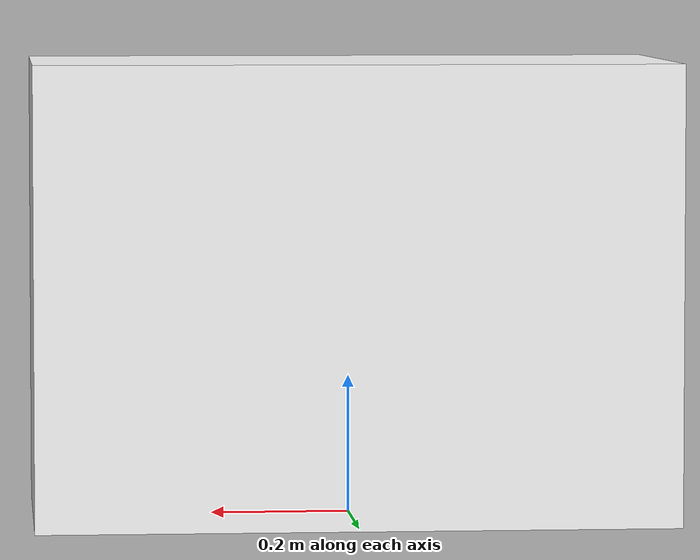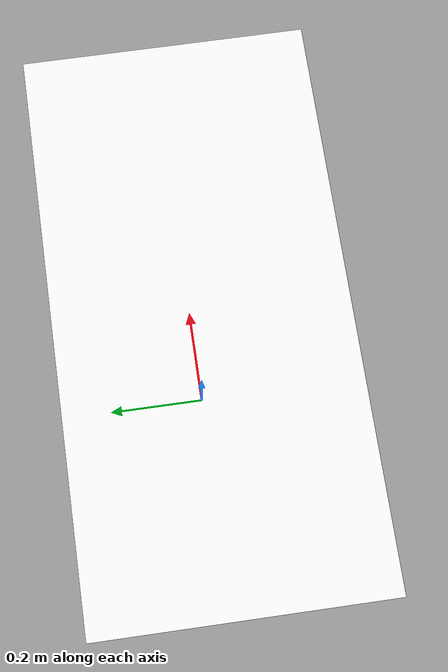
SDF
<sdf version="1.6">
    <model name="storage_table">
        <static>true</static>
        <!-- Body of the storage table -->
        <link name="body">
            <pose>0 0 0.33 0 0 0</pose>
            <visual name="visual_body">
                <geometry>
                    <box>
                        <size>0.92 0.46 0.66</size>
                    </box>
                </geometry>
                <material>
                    <ambient>1 1 1 1</ambient> <!-- White color, fully opaque -->
                </material>
            </visual>
            <collision name="collision_body">
                <geometry>
                    <box>
                        <size>0.92 0.46 0.66</size>
                    </box>
                </geometry>
            </collision>
        </link>
    </model>
</sdf>
